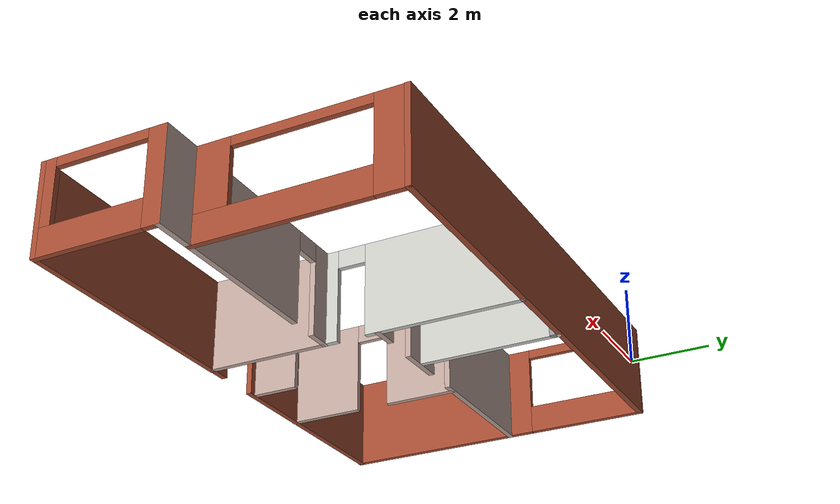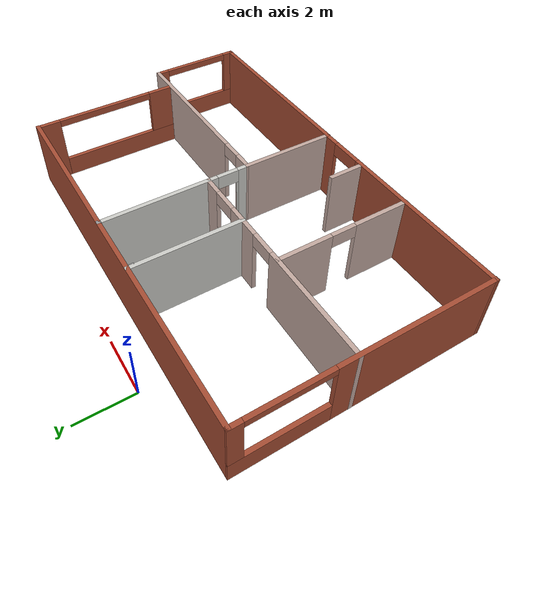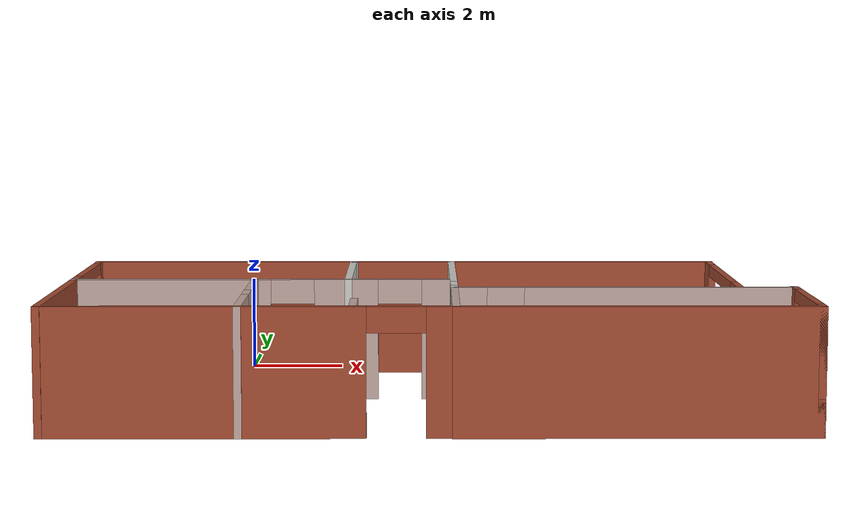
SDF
<?xml version='1.0'?>
<sdf version='1.7'>
  <model name='appartment'>
    <pose>3.97191 -4.88453 0 0 -0 0</pose>
    <link name='Wall_17'>
      <collision name='Wall_17_Collision'>
        <geometry>
          <box>
            <size>7.01323 0.15 2.5</size>
          </box>
        </geometry>
        <pose>0 0 1.25 0 -0 0</pose>
      </collision>
      <visual name='Wall_17_Visual'>
        <pose>0 0 1.25 0 -0 0</pose>
        <geometry>
          <box>
            <size>7.01323 0.15 2.5</size>
          </box>
        </geometry>
        <material>
          <script>
            <uri>file://media/materials/scripts/gazebo.material</uri>
            <name>Gazebo/Bricks</name>
          </script>
          <ambient>0.760784 0.662745 0.627451 1</ambient>
        </material>
        <meta>
          <layer>0</layer>
        </meta>
      </visual>
      <pose>3.92504 -4.80945 0 0 -0 3.14159</pose>
    </link>
    <link name='Wall_19'>
      <pose>3.93165 -1.45945 0 0 -0 0</pose>
      <visual name='Wall_19_Visual_0'>
        <pose>-3.135 0 1.25 0 -0 0</pose>
        <geometry>
          <box>
            <size>0.73 0.15 2.5</size>
          </box>
        </geometry>
        <material>
          <script>
            <uri>file://media/materials/scripts/gazebo.material</uri>
            <name>Gazebo/Grey</name>
          </script>
          <ambient>0.760784 0.662745 0.627451 1</ambient>
        </material>
        <meta>
          <layer>0</layer>
        </meta>
      </visual>
      <collision name='Wall_19_Collision_0'>
        <geometry>
          <box>
            <size>0.73 0.15 2.5</size>
          </box>
        </geometry>
        <pose>-3.135 0 1.25 0 -0 0</pose>
      </collision>
      <visual name='Wall_19_Visual_1'>
        <pose>0.74 0 1.25 0 -0 0</pose>
        <geometry>
          <box>
            <size>5.52 0.15 2.5</size>
          </box>
        </geometry>
        <material>
          <script>
            <uri>file://media/materials/scripts/gazebo.material</uri>
            <name>Gazebo/Grey</name>
          </script>
          <ambient>0.760784 0.662745 0.627451 1</ambient>
        </material>
        <meta>
          <layer>0</layer>
        </meta>
      </visual>
      <collision name='Wall_19_Collision_1'>
        <geometry>
          <box>
            <size>5.52 0.15 2.5</size>
          </box>
        </geometry>
        <pose>0.74 0 1.25 0 -0 0</pose>
      </collision>
      <visual name='Wall_19_Visual_2'>
        <pose>-2.395 0 2.25 0 -0 0</pose>
        <geometry>
          <box>
            <size>0.75 0.15 0.5</size>
          </box>
        </geometry>
        <material>
          <script>
            <uri>file://media/materials/scripts/gazebo.material</uri>
            <name>Gazebo/Grey</name>
          </script>
          <ambient>0.760784 0.662745 0.627451 1</ambient>
        </material>
        <meta>
          <layer>0</layer>
        </meta>
      </visual>
      <collision name='Wall_19_Collision_2'>
        <geometry>
          <box>
            <size>0.75 0.15 0.5</size>
          </box>
        </geometry>
        <pose>-2.395 0 2.25 0 -0 0</pose>
      </collision>
    </link>
    <link name='Wall_20'>
      <pose>7.35665 -3.13446 0 0 -0 -1.5708</pose>
      <visual name='Wall_20_Visual_0'>
        <pose>-1.5025 0 1.25 0 -0 0</pose>
        <geometry>
          <box>
            <size>0.495 0.15 2.5</size>
          </box>
        </geometry>
        <material>
          <script>
            <uri>file://media/materials/scripts/gazebo.material</uri>
            <name>Gazebo/Bricks</name>
          </script>
          <ambient>0.760784 0.662745 0.627451 1</ambient>
        </material>
        <meta>
          <layer>0</layer>
        </meta>
      </visual>
      <collision name='Wall_20_Collision_0'>
        <geometry>
          <box>
            <size>0.495 0.15 2.5</size>
          </box>
        </geometry>
        <pose>-1.5025 0 1.25 0 -0 0</pose>
      </collision>
      <visual name='Wall_20_Visual_1'>
        <pose>0.2475 0 0.375 0 -0 0</pose>
        <geometry>
          <box>
            <size>3.005 0.15 0.75</size>
          </box>
        </geometry>
        <material>
          <script>
            <uri>file://media/materials/scripts/gazebo.material</uri>
            <name>Gazebo/Bricks</name>
          </script>
          <ambient>0.760784 0.662745 0.627451 1</ambient>
        </material>
        <meta>
          <layer>0</layer>
        </meta>
      </visual>
      <collision name='Wall_20_Collision_1'>
        <geometry>
          <box>
            <size>3.005 0.15 0.75</size>
          </box>
        </geometry>
        <pose>0.2475 0 0.375 0 -0 0</pose>
      </collision>
      <visual name='Wall_20_Visual_2'>
        <pose>1.5225 0 1.625 0 -0 0</pose>
        <geometry>
          <box>
            <size>0.455 0.15 1.75</size>
          </box>
        </geometry>
        <material>
          <script>
            <uri>file://media/materials/scripts/gazebo.material</uri>
            <name>Gazebo/Bricks</name>
          </script>
          <ambient>0.760784 0.662745 0.627451 1</ambient>
        </material>
        <meta>
          <layer>0</layer>
        </meta>
      </visual>
      <collision name='Wall_20_Collision_2'>
        <geometry>
          <box>
            <size>0.455 0.15 1.75</size>
          </box>
        </geometry>
        <pose>1.5225 0 1.625 0 -0 0</pose>
      </collision>
      <visual name='Wall_20_Visual_3'>
        <pose>0.02 0 2.375 0 -0 0</pose>
        <geometry>
          <box>
            <size>2.55 0.15 0.25</size>
          </box>
        </geometry>
        <material>
          <script>
            <uri>file://media/materials/scripts/gazebo.material</uri>
            <name>Gazebo/Bricks</name>
          </script>
          <ambient>0.760784 0.662745 0.627451 1</ambient>
        </material>
        <meta>
          <layer>0</layer>
        </meta>
      </visual>
      <collision name='Wall_20_Collision_3'>
        <geometry>
          <box>
            <size>2.55 0.15 0.25</size>
          </box>
        </geometry>
        <pose>0.02 0 2.375 0 -0 0</pose>
      </collision>
    </link>
    <link name='Wall_22'>
      <pose>-3.43158 -4.79623 0 0 -0 3.14159</pose>
      <visual name='Wall_22_Visual_0'>
        <pose>-3.68244 0 1.25 0 -0 0</pose>
        <geometry>
          <box>
            <size>0.635115 0.15 2.5</size>
          </box>
        </geometry>
        <material>
          <script>
            <uri>file://media/materials/scripts/gazebo.material</uri>
            <name>Gazebo/Bricks</name>
          </script>
          <ambient>0.760784 0.662745 0.627451 1</ambient>
        </material>
        <meta>
          <layer>0</layer>
        </meta>
      </visual>
      <collision name='Wall_22_Collision_0'>
        <geometry>
          <box>
            <size>0.635115 0.15 2.5</size>
          </box>
        </geometry>
        <pose>-3.68244 0 1.25 0 -0 0</pose>
      </collision>
      <visual name='Wall_22_Visual_1'>
        <pose>0.87997 0 1.25 0 -0 0</pose>
        <geometry>
          <box>
            <size>6.24006 0.15 2.5</size>
          </box>
        </geometry>
        <material>
          <script>
            <uri>file://media/materials/scripts/gazebo.material</uri>
            <name>Gazebo/Bricks</name>
          </script>
          <ambient>0.760784 0.662745 0.627451 1</ambient>
        </material>
        <meta>
          <layer>0</layer>
        </meta>
      </visual>
      <collision name='Wall_22_Collision_1'>
        <geometry>
          <box>
            <size>6.24006 0.15 2.5</size>
          </box>
        </geometry>
        <pose>0.87997 0 1.25 0 -0 0</pose>
      </collision>
      <visual name='Wall_22_Visual_2'>
        <pose>-2.80247 0 2.25 0 -0 0</pose>
        <geometry>
          <box>
            <size>1.12482 0.15 0.5</size>
          </box>
        </geometry>
        <material>
          <script>
            <uri>file://media/materials/scripts/gazebo.material</uri>
            <name>Gazebo/Bricks</name>
          </script>
          <ambient>0.760784 0.662745 0.627451 1</ambient>
        </material>
        <meta>
          <layer>0</layer>
        </meta>
      </visual>
      <collision name='Wall_22_Collision_2'>
        <geometry>
          <box>
            <size>1.12482 0.15 0.5</size>
          </box>
        </geometry>
        <pose>-2.80247 0 2.25 0 -0 0</pose>
      </collision>
    </link>
    <link name='Wall_23'>
      <pose>-7.35236 -0.45371 0 0 -0 1.56983</pose>
      <visual name='Wall_23_Visual_0'>
        <pose>-1.61745 0 1.25 0 -0 0</pose>
        <geometry>
          <box>
            <size>5.62659 0.15 2.5</size>
          </box>
        </geometry>
        <material>
          <script>
            <uri>file://media/materials/scripts/gazebo.material</uri>
            <name>Gazebo/Bricks</name>
          </script>
          <ambient>0.760784 0.662745 0.627451 1</ambient>
        </material>
        <meta>
          <layer>0</layer>
        </meta>
      </visual>
      <collision name='Wall_23_Collision_0'>
        <geometry>
          <box>
            <size>5.62659 0.15 2.5</size>
          </box>
        </geometry>
        <pose>-1.61745 0 1.25 0 -0 0</pose>
      </collision>
      <visual name='Wall_23_Visual_1'>
        <pose>2.8133 0 0.375 0 -0 0</pose>
        <geometry>
          <box>
            <size>3.2349 0.15 0.75</size>
          </box>
        </geometry>
        <material>
          <script>
            <uri>file://media/materials/scripts/gazebo.material</uri>
            <name>Gazebo/Bricks</name>
          </script>
          <ambient>0.760784 0.662745 0.627451 1</ambient>
        </material>
        <meta>
          <layer>0</layer>
        </meta>
      </visual>
      <collision name='Wall_23_Collision_1'>
        <geometry>
          <box>
            <size>3.2349 0.15 0.75</size>
          </box>
        </geometry>
        <pose>2.8133 0 0.375 0 -0 0</pose>
      </collision>
      <visual name='Wall_23_Visual_2'>
        <pose>4.1853 0 1.625 0 -0 0</pose>
        <geometry>
          <box>
            <size>0.490904 0.15 1.75</size>
          </box>
        </geometry>
        <material>
          <script>
            <uri>file://media/materials/scripts/gazebo.material</uri>
            <name>Gazebo/Bricks</name>
          </script>
          <ambient>0.760784 0.662745 0.627451 1</ambient>
        </material>
        <meta>
          <layer>0</layer>
        </meta>
      </visual>
      <collision name='Wall_23_Collision_2'>
        <geometry>
          <box>
            <size>0.490904 0.15 1.75</size>
          </box>
        </geometry>
        <pose>4.1853 0 1.625 0 -0 0</pose>
      </collision>
      <visual name='Wall_23_Visual_3'>
        <pose>2.56784 0 2.375 0 -0 0</pose>
        <geometry>
          <box>
            <size>2.744 0.15 0.25</size>
          </box>
        </geometry>
        <material>
          <script>
            <uri>file://media/materials/scripts/gazebo.material</uri>
            <name>Gazebo/Bricks</name>
          </script>
          <ambient>0.760784 0.662745 0.627451 1</ambient>
        </material>
        <meta>
          <layer>0</layer>
        </meta>
      </visual>
      <collision name='Wall_23_Collision_3'>
        <geometry>
          <box>
            <size>2.744 0.15 0.25</size>
          </box>
        </geometry>
        <pose>2.56784 0 2.375 0 -0 0</pose>
      </collision>
    </link>
    <link name='Wall_24'>
      <collision name='Wall_24_Collision'>
        <geometry>
          <box>
            <size>13.75 0.15 2.5</size>
          </box>
        </geometry>
        <pose>0 0 1.25 0 -0 0</pose>
      </collision>
      <visual name='Wall_24_Visual'>
        <pose>0 0 1.25 0 -0 0</pose>
        <geometry>
          <box>
            <size>13.75 0.15 2.5</size>
          </box>
        </geometry>
        <material>
          <script>
            <uri>file://media/materials/scripts/gazebo.material</uri>
            <name>Gazebo/Bricks</name>
          </script>
          <ambient>0.760784 0.662745 0.627451 1</ambient>
        </material>
        <meta>
          <layer>0</layer>
        </meta>
      </visual>
      <pose>-0.532933 3.90204 0 0 -0 0</pose>
    </link>
    <link name='Wall_25'>
      <pose>6.25186 1.22704 0 0 -0 -1.5708</pose>
      <visual name='Wall_25_Visual_0'>
        <pose>-2.3128 0 1.25 0 -0 0</pose>
        <geometry>
          <box>
            <size>0.874394 0.15 2.5</size>
          </box>
        </geometry>
        <material>
          <script>
            <uri>file://media/materials/scripts/gazebo.material</uri>
            <name>Gazebo/Bricks</name>
          </script>
          <ambient>0.760784 0.662745 0.627451 1</ambient>
        </material>
        <meta>
          <layer>0</layer>
        </meta>
      </visual>
      <collision name='Wall_25_Collision_0'>
        <geometry>
          <box>
            <size>0.874394 0.15 2.5</size>
          </box>
        </geometry>
        <pose>-2.3128 0 1.25 0 -0 0</pose>
      </collision>
      <visual name='Wall_25_Visual_1'>
        <pose>0.437197 0 0.375 0 -0 0</pose>
        <geometry>
          <box>
            <size>4.62561 0.15 0.75</size>
          </box>
        </geometry>
        <material>
          <script>
            <uri>file://media/materials/scripts/gazebo.material</uri>
            <name>Gazebo/Bricks</name>
          </script>
          <ambient>0.760784 0.662745 0.627451 1</ambient>
        </material>
        <meta>
          <layer>0</layer>
        </meta>
      </visual>
      <collision name='Wall_25_Collision_1'>
        <geometry>
          <box>
            <size>4.62561 0.15 0.75</size>
          </box>
        </geometry>
        <pose>0.437197 0 0.375 0 -0 0</pose>
      </collision>
      <visual name='Wall_25_Visual_2'>
        <pose>2.23243 0 1.625 0 -0 0</pose>
        <geometry>
          <box>
            <size>1.03513 0.15 1.75</size>
          </box>
        </geometry>
        <material>
          <script>
            <uri>file://media/materials/scripts/gazebo.material</uri>
            <name>Gazebo/Bricks</name>
          </script>
          <ambient>0.760784 0.662745 0.627451 1</ambient>
        </material>
        <meta>
          <layer>0</layer>
        </meta>
      </visual>
      <collision name='Wall_25_Collision_2'>
        <geometry>
          <box>
            <size>1.03513 0.15 1.75</size>
          </box>
        </geometry>
        <pose>2.23243 0 1.625 0 -0 0</pose>
      </collision>
      <visual name='Wall_25_Visual_3'>
        <pose>-0.080369 0 2.375 0 -0 0</pose>
        <geometry>
          <box>
            <size>3.59048 0.15 0.25</size>
          </box>
        </geometry>
        <material>
          <script>
            <uri>file://media/materials/scripts/gazebo.material</uri>
            <name>Gazebo/Bricks</name>
          </script>
          <ambient>0.760784 0.662745 0.627451 1</ambient>
        </material>
        <meta>
          <layer>0</layer>
        </meta>
      </visual>
      <collision name='Wall_25_Collision_3'>
        <geometry>
          <box>
            <size>3.59048 0.15 0.25</size>
          </box>
        </geometry>
        <pose>-0.080369 0 2.375 0 -0 0</pose>
      </collision>
    </link>
    <link name='Wall_27'>
      <pose>0.506649 1.21555 0 0 -0 1.5708</pose>
      <visual name='Wall_27_Visual_0'>
        <pose>-2.5168 0 1.25 0 -0 0</pose>
        <geometry>
          <box>
            <size>0.466402 0.15 2.5</size>
          </box>
        </geometry>
        <material>
          <script>
            <uri>file://media/materials/scripts/gazebo.material</uri>
            <name>Gazebo/CeilingTiled</name>
          </script>
          <ambient>0.760784 0.662745 0.627451 1</ambient>
        </material>
        <meta>
          <layer>0</layer>
        </meta>
      </visual>
      <collision name='Wall_27_Collision_0'>
        <geometry>
          <box>
            <size>0.466402 0.15 2.5</size>
          </box>
        </geometry>
        <pose>-2.5168 0 1.25 0 -0 0</pose>
      </collision>
      <visual name='Wall_27_Visual_1'>
        <pose>0.618201 0 1.25 0 -0 0</pose>
        <geometry>
          <box>
            <size>4.2636 0.15 2.5</size>
          </box>
        </geometry>
        <material>
          <script>
            <uri>file://media/materials/scripts/gazebo.material</uri>
            <name>Gazebo/CeilingTiled</name>
          </script>
          <ambient>0.760784 0.662745 0.627451 1</ambient>
        </material>
        <meta>
          <layer>0</layer>
        </meta>
      </visual>
      <collision name='Wall_27_Collision_1'>
        <geometry>
          <box>
            <size>4.2636 0.15 2.5</size>
          </box>
        </geometry>
        <pose>0.618201 0 1.25 0 -0 0</pose>
      </collision>
      <visual name='Wall_27_Visual_2'>
        <pose>-1.8986 0 2.25 0 -0 0</pose>
        <geometry>
          <box>
            <size>0.77 0.15 0.5</size>
          </box>
        </geometry>
        <material>
          <script>
            <uri>file://media/materials/scripts/gazebo.material</uri>
            <name>Gazebo/CeilingTiled</name>
          </script>
          <ambient>0.760784 0.662745 0.627451 1</ambient>
        </material>
        <meta>
          <layer>0</layer>
        </meta>
      </visual>
      <collision name='Wall_27_Collision_2'>
        <geometry>
          <box>
            <size>0.77 0.15 0.5</size>
          </box>
        </geometry>
        <pose>-1.8986 0 2.25 0 -0 0</pose>
      </collision>
    </link>
    <link name='Wall_28'>
      <collision name='Wall_28_Collision'>
        <geometry>
          <box>
            <size>0.15 0.15 2.5</size>
          </box>
        </geometry>
        <pose>0 0 1.25 0 -0 0</pose>
      </collision>
      <visual name='Wall_28_Visual'>
        <pose>0 0 1.25 0 -0 0</pose>
        <geometry>
          <box>
            <size>0.15 0.15 2.5</size>
          </box>
        </geometry>
        <material>
          <script>
            <uri>file://media/materials/scripts/gazebo.material</uri>
            <name>Gazebo/Grey</name>
          </script>
          <ambient>1 1 1 1</ambient>
        </material>
        <meta>
          <layer>0</layer>
        </meta>
      </visual>
      <pose>0.506649 3.89054 0 0 -0 0</pose>
    </link>
    <link name='Wall_35'>
      <collision name='Wall_35_Collision'>
        <geometry>
          <box>
            <size>0.15 0.15 2.5</size>
          </box>
        </geometry>
        <pose>0 0 1.25 0 -0 0</pose>
      </collision>
      <visual name='Wall_35_Visual'>
        <pose>0 0 1.25 0 -0 0</pose>
        <geometry>
          <box>
            <size>0.15 0.15 2.5</size>
          </box>
        </geometry>
        <material>
          <script>
            <uri>file://media/materials/scripts/gazebo.material</uri>
            <name>Gazebo/Grey</name>
          </script>
          <ambient>1 1 1 1</ambient>
        </material>
        <meta>
          <layer>0</layer>
        </meta>
      </visual>
      <pose>-1.64094 3.72672 0 0 -0 0</pose>
    </link>
    <link name='Wall_39'>
      <pose>-3.42998 0.044417 0 0 -0 3.14159</pose>
      <visual name='Wall_39_Visual_0'>
        <pose>-3.63866 0 1.25 0 -0 0</pose>
        <geometry>
          <box>
            <size>0.722675 0.15 2.5</size>
          </box>
        </geometry>
        <material>
          <script>
            <uri>file://media/materials/scripts/gazebo.material</uri>
            <name>Gazebo/Grey</name>
          </script>
          <ambient>0.760784 0.662745 0.627451 1</ambient>
        </material>
        <meta>
          <layer>0</layer>
        </meta>
      </visual>
      <collision name='Wall_39_Collision_0'>
        <geometry>
          <box>
            <size>0.722675 0.15 2.5</size>
          </box>
        </geometry>
        <pose>-3.63866 0 1.25 0 -0 0</pose>
      </collision>
      <visual name='Wall_39_Visual_1'>
        <pose>-1.71643 0 1.25 0 -0 0</pose>
        <geometry>
          <box>
            <size>1.3218 0.15 2.5</size>
          </box>
        </geometry>
        <material>
          <script>
            <uri>file://media/materials/scripts/gazebo.material</uri>
            <name>Gazebo/Grey</name>
          </script>
          <ambient>0.760784 0.662745 0.627451 1</ambient>
        </material>
        <meta>
          <layer>0</layer>
        </meta>
      </visual>
      <collision name='Wall_39_Collision_1'>
        <geometry>
          <box>
            <size>1.3218 0.15 2.5</size>
          </box>
        </geometry>
        <pose>-1.71643 0 1.25 0 -0 0</pose>
      </collision>
      <visual name='Wall_39_Visual_2'>
        <pose>1.92224 0 1.25 0 -0 0</pose>
        <geometry>
          <box>
            <size>4.15552 0.15 2.5</size>
          </box>
        </geometry>
        <material>
          <script>
            <uri>file://media/materials/scripts/gazebo.material</uri>
            <name>Gazebo/Grey</name>
          </script>
          <ambient>0.760784 0.662745 0.627451 1</ambient>
        </material>
        <meta>
          <layer>0</layer>
        </meta>
      </visual>
      <collision name='Wall_39_Collision_2'>
        <geometry>
          <box>
            <size>4.15552 0.15 2.5</size>
          </box>
        </geometry>
        <pose>1.92224 0 1.25 0 -0 0</pose>
      </collision>
      <visual name='Wall_39_Visual_3'>
        <pose>-2.82733 0 2.25 0 -0 0</pose>
        <geometry>
          <box>
            <size>0.9 0.15 0.5</size>
          </box>
        </geometry>
        <material>
          <script>
            <uri>file://media/materials/scripts/gazebo.material</uri>
            <name>Gazebo/Grey</name>
          </script>
          <ambient>0.760784 0.662745 0.627451 1</ambient>
        </material>
        <meta>
          <layer>0</layer>
        </meta>
      </visual>
      <collision name='Wall_39_Collision_3'>
        <geometry>
          <box>
            <size>0.9 0.15 0.5</size>
          </box>
        </geometry>
        <pose>-2.82733 0 2.25 0 -0 0</pose>
      </collision>
      <visual name='Wall_39_Visual_4'>
        <pose>-0.605525 0 2.25 0 -0 0</pose>
        <geometry>
          <box>
            <size>0.9 0.15 0.5</size>
          </box>
        </geometry>
        <material>
          <script>
            <uri>file://media/materials/scripts/gazebo.material</uri>
            <name>Gazebo/Grey</name>
          </script>
          <ambient>0.760784 0.662745 0.627451 1</ambient>
        </material>
        <meta>
          <layer>0</layer>
        </meta>
      </visual>
      <collision name='Wall_39_Collision_4'>
        <geometry>
          <box>
            <size>0.9 0.15 0.5</size>
          </box>
        </geometry>
        <pose>-0.605525 0 2.25 0 -0 0</pose>
      </collision>
    </link>
    <link name='Wall_41'>
      <collision name='Wall_41_Collision'>
        <geometry>
          <box>
            <size>4 0.15 2.5</size>
          </box>
        </geometry>
        <pose>0 0 1.25 0 -0 0</pose>
      </collision>
      <visual name='Wall_41_Visual'>
        <pose>0 0 1.25 0 -0 0</pose>
        <geometry>
          <box>
            <size>4 0.15 2.5</size>
          </box>
        </geometry>
        <material>
          <script>
            <uri>file://media/materials/scripts/gazebo.material</uri>
            <name>Gazebo/CeilingTiled</name>
          </script>
          <ambient>0.760784 0.662745 0.627451 1</ambient>
        </material>
        <meta>
          <layer>0</layer>
        </meta>
      </visual>
      <pose>-1.67388 1.96789 0 0 -0 -1.5708</pose>
    </link>
    <link name='Wall_44'>
      <pose>-3.60473 -2.38186 0 0 -0 -1.5708</pose>
      <visual name='Wall_44_Visual_0'>
        <pose>-1.49127 0 1.25 0 -0 0</pose>
        <geometry>
          <box>
            <size>2.01745 0.15 2.5</size>
          </box>
        </geometry>
        <material>
          <script>
            <uri>file://media/materials/scripts/gazebo.material</uri>
            <name>Gazebo/Grey</name>
          </script>
          <ambient>0.760784 0.662745 0.627451 1</ambient>
        </material>
        <meta>
          <layer>0</layer>
        </meta>
      </visual>
      <collision name='Wall_44_Collision_0'>
        <geometry>
          <box>
            <size>2.01745 0.15 2.5</size>
          </box>
        </geometry>
        <pose>-1.49127 0 1.25 0 -0 0</pose>
      </collision>
      <visual name='Wall_44_Visual_1'>
        <pose>1.45873 0 1.25 0 -0 0</pose>
        <geometry>
          <box>
            <size>2.08255 0.15 2.5</size>
          </box>
        </geometry>
        <material>
          <script>
            <uri>file://media/materials/scripts/gazebo.material</uri>
            <name>Gazebo/Grey</name>
          </script>
          <ambient>0.760784 0.662745 0.627451 1</ambient>
        </material>
        <meta>
          <layer>0</layer>
        </meta>
      </visual>
      <collision name='Wall_44_Collision_1'>
        <geometry>
          <box>
            <size>2.08255 0.15 2.5</size>
          </box>
        </geometry>
        <pose>1.45873 0 1.25 0 -0 0</pose>
      </collision>
      <visual name='Wall_44_Visual_2'>
        <pose>-0.03255 0 2.25 0 -0 0</pose>
        <geometry>
          <box>
            <size>0.9 0.15 0.5</size>
          </box>
        </geometry>
        <material>
          <script>
            <uri>file://media/materials/scripts/gazebo.material</uri>
            <name>Gazebo/Grey</name>
          </script>
          <ambient>0.760784 0.662745 0.627451 1</ambient>
        </material>
        <meta>
          <layer>0</layer>
        </meta>
      </visual>
      <collision name='Wall_44_Collision_2'>
        <geometry>
          <box>
            <size>0.9 0.15 0.5</size>
          </box>
        </geometry>
        <pose>-0.03255 0 2.25 0 -0 0</pose>
      </collision>
    </link>
    <link name='Wall_46'>
      <collision name='Wall_46_Collision'>
        <geometry>
          <box>
            <size>1.25 0.15 2.5</size>
          </box>
        </geometry>
        <pose>0 0 1.25 0 -0 0</pose>
      </collision>
      <visual name='Wall_46_Visual'>
        <pose>0 0 1.25 0 -0 0</pose>
        <geometry>
          <box>
            <size>1.25 0.15 2.5</size>
          </box>
        </geometry>
        <material>
          <script>
            <uri>file://media/materials/scripts/gazebo.material</uri>
            <name>Gazebo/Grey</name>
          </script>
          <ambient>0.760784 0.662745 0.627451 1</ambient>
        </material>
        <meta>
          <layer>0</layer>
        </meta>
      </visual>
      <pose>-1.44905 -4.10278 0 0 -0 -1.5708</pose>
    </link>
    <link name='Wall_48'>
      <collision name='Wall_48_Collision'>
        <geometry>
          <box>
            <size>3.4868 0.15 2.5</size>
          </box>
        </geometry>
        <pose>0 0 1.25 0 -0 0</pose>
      </collision>
      <visual name='Wall_48_Visual'>
        <pose>0 0 1.25 0 -0 0</pose>
        <geometry>
          <box>
            <size>3.4868 0.15 2.5</size>
          </box>
        </geometry>
        <material>
          <script>
            <uri>file://media/materials/scripts/gazebo.material</uri>
            <name>Gazebo/Grey</name>
          </script>
          <ambient>0.760784 0.662745 0.627451 1</ambient>
        </material>
        <meta>
          <layer>0</layer>
        </meta>
      </visual>
      <pose>0.500037 -3.12784 0 0 -0 -1.57476</pose>
    </link>
    <static>1</static>
  </model>
</sdf>
